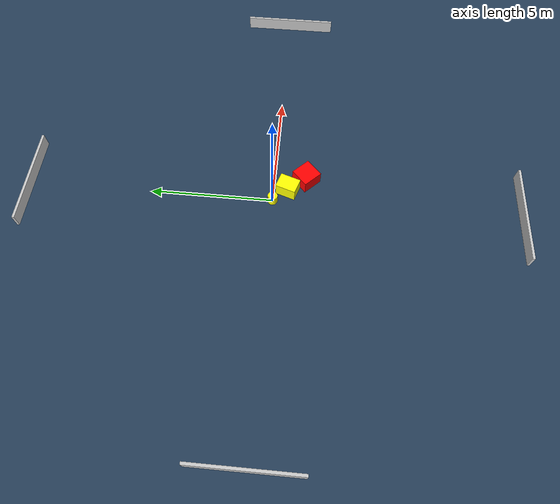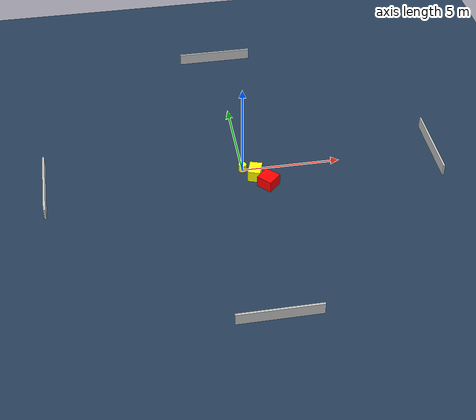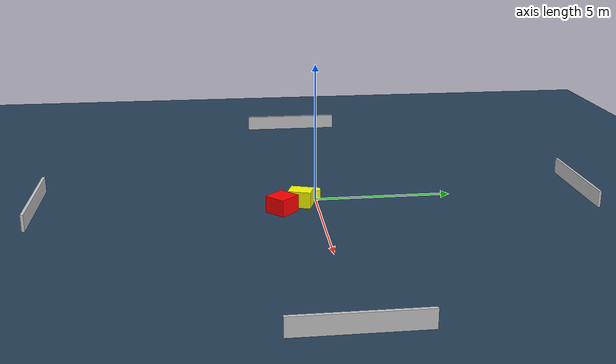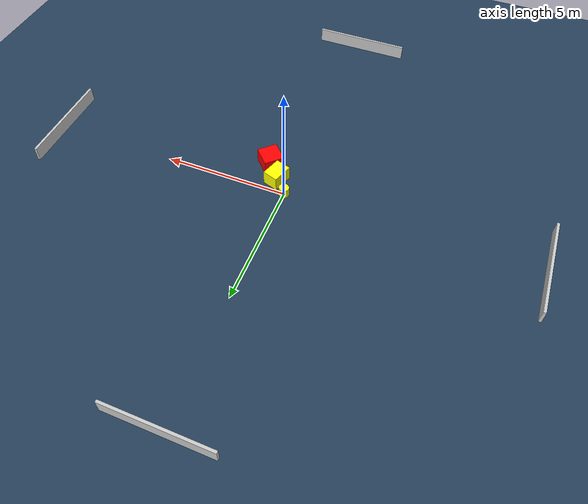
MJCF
<?xml version="1.0" ?>
<mujoco model="generated_environment">
  <option timestep="0.01" integrator="RK4" cone="elliptic"/>
  <default>
    <geom density="1"/>
  </default>
  <asset>
    <texture builtin="gradient" height="3072" name="skybox" rgb1="0.3 0.5 0.7" rgb2="0 0 0" type="skybox" width="512"/>
    <texture builtin="checker" height="300" name="groundplane" rgb1="0.2 0.3 0.4" rgb2="0.1 0.2 0.3" type="2d" width="300"/>
    <material name="groundplane" reflectance="0.2" texrepeat="5 5" texture="groundplane"/>
  </asset>
  <worldbody>
    <light dir="0 0 -1" directional="true" pos="0 0 1.5"/>
    <geom condim="3" friction="0.5 0.005 0.001" material="groundplane" name="floor" pos="0 0 0" size="0 0 0.05" type="plane"/>
    <body name="walls">
      <geom name="wall_1" condim="4" pos="-10.0 0.0 0.3" rgba="0.800000011920929 0.800000011920929 0.800000011920929 1.0" size="0.05 2.0 0.3" type="box"/>
      <geom name="wall_2" condim="4" pos="10.0 0.0 0.3" rgba="0.800000011920929 0.800000011920929 0.800000011920929 1.0" size="0.05 2.0 0.3" type="box"/>
      <geom name="wall_3" condim="4" pos="0.0 -10.0 0.3" rgba="0.800000011920929 0.800000011920929 0.800000011920929 1.0" size="2.0 0.05 0.3" type="box"/>
      <geom name="wall_4" condim="4" pos="0.0 10.0 0.3" rgba="0.800000011920929 0.800000011920929 0.800000011920929 1.0" size="2.0 0.05 0.3" type="box"/>
    </body>
    <body name="robot">
      <joint name="joint_x" type="slide" pos="0 0 0" axis="1 0 0"/>
      <joint name="joint_y" type="slide" pos="0 0 0" axis="0 1 0"/>
      <geom name="robot" type="cylinder" pos="0.0 0.0 0.2" size="0.2 0.2 0.0" mass="5.0" friction="1.0 0.005 0.0001" condim="4" rgba="1.0 1.0 0.0 1.0"/>
    </body>
    <body name="obstacle_1_movable">
      <geom name="obstacle_1_movable" condim="4" pos="0.5409023357661472 -0.5785299071336795 0.3" euler="0 0 161.59563347742028" friction="0.0 0.005 0.001" rgba="1.0 1.0 0.0 1.0" size="0.31418685843807775 0.41548108872696266 0.3" type="box" mass="0.1"/>
      <joint type="free"/>
    </body>
    <body name="obstacle_2_static">
      <geom name="obstacle_2_static" condim="4" pos="1.0980503364507825 -1.3051336354082332 0.3" euler="0 0 134.03400080768472" friction="0.0 0.005 0.001" rgba="1.0 0.0 0.0 1.0" size="0.41636494084134057 0.40697045780169727 0.3" type="box"/>
    </body>
  </worldbody>
  <actuator>
    <motor name="actuator_x" joint="joint_x" gear="1" ctrlrange="-1 1"/>
    <motor name="actuator_y" joint="joint_y" gear="1" ctrlrange="-1 1"/>
  </actuator>
</mujoco>
